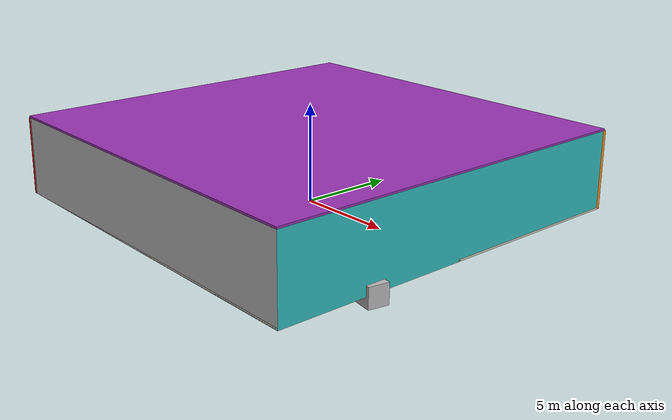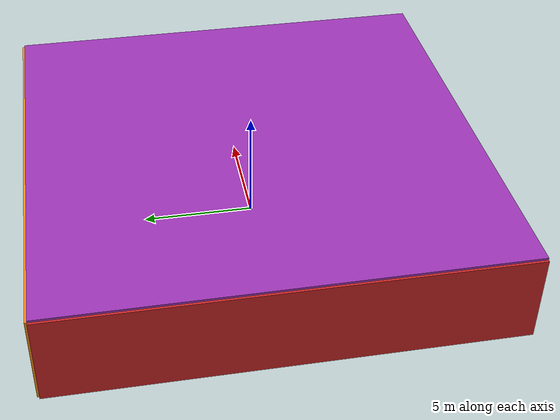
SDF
<sdf version="1.4">
 <world name="default">
  <physics type="ode">
   <max_step_size>0.001</max_step_size>
   <real_time_factor>1</real_time_factor>
   <real_time_update_rate>1000</real_time_update_rate>
   <gravity>0 0 -9.8</gravity>
  </physics>
  <scene><ambient>0.4 0.4 0.4 1</ambient><background>0.7 0.7 0.7 1</background><shadows>1</shadows></scene>
  <model name="Surrounding">
   <static>1</static>
   <link name="Ceiling">
    <collision name="Ceiling_Collision"><geometry><box><size>20 20 0.1</size></box></geometry></collision>
    <visual name="Ceiling_Visual">
     <geometry><box><size>20 20 0.1</size></box></geometry>
     <material>
      <script><uri>file://media/materials/scripts/gazebo.material</uri><name>Gazebo/Purple</name></script>
     </material>
    </visual>
    <pose>0 0 4.05 0 0 0</pose>
   </link>
   <link name="Wall_South">
    <collision name="Wall_South_Collision">
     <geometry><box><size>20 0 4</size></box></geometry>
     <pose>0 0 2 0 -0 0</pose>
    </collision>
    <visual name="Wall_South_Visual">
     <pose>0 0 2 0 -0 0</pose>
     <geometry><box><size>20 0 4</size></box></geometry>
     <material>
      <script><uri>file://media/materials/scripts/gazebo.material</uri><name>Gazebo/Pioneer2Body</name></script>
     </material>
    </visual>
    <velocity_decay><linear>0</linear><angular>0</angular></velocity_decay>
    <pose>0 -10 0 0 -0 0</pose>
   </link>
   <link name="Wall_East">
    <collision name="Wall_21_Collision">
     <geometry><box><size>20 0 4</size></box></geometry>
     <pose>0 0 2 0 -0 0</pose>
    </collision>
    <visual name="Wall_21_Visual">
     <pose>0 0 2 0 -0 0</pose>
     <geometry><box><size>20 0 4</size></box></geometry>
     <material>
      <script><uri>file://media/materials/scripts/gazebo.material</uri><name>Gazebo/Turquoise</name></script>
     </material>
    </visual>
    <velocity_decay><linear>0</linear><angular>0</angular></velocity_decay>
    <pose>10 0 0 0 -0 1.5708</pose>
   </link>
   <link name="Wall_North">
    <collision name="Wall_22_Collision">
     <geometry><box><size>20 0.2 4</size></box></geometry>
     <pose>0 0 2 0 -0 0</pose>
    </collision>
    <visual name="Wall_22_Visual">
     <pose>0 0 2 0 -0 0</pose>
     <geometry><box><size>20 0.2 4</size></box></geometry>
     <material>
      <script><uri>file://media/materials/scripts/gazebo.material</uri><name>Gazebo/Orange</name></script>
     </material>
    </visual>
    <velocity_decay><linear>0</linear><angular>0</angular></velocity_decay>
    <pose>0 10 0 0 -0 0</pose>
   </link>
   <link name="Wall_West">
    <collision name="Wall_23_Collision">
     <geometry><box><size>20 0.2 4</size></box></geometry>
     <pose>0 0 2 0 -0 0</pose>
    </collision>
    <visual name="Wall_23_Visual">
     <pose>0 0 2 0 -0 0</pose>
     <geometry><box><size>20 0.2 4</size></box></geometry>
     <material>
      <script><uri>file://media/materials/scripts/gazebo.material</uri><name>Gazebo/RedGlow</name></script>
     </material>
    </visual>
    <velocity_decay><linear>0</linear><angular>0</angular></velocity_decay>
    <pose>-10 0 0 0 0 -1.5708</pose>
   </link>
   <link name="Ground_link">
    <collision name="collision">
     <pose>0 0 .05 0 -0 0</pose>
     <geometry><box><size>20 20 0.1</size></box></geometry>
    </collision>
    <visual name="visual">
     <pose>0 0 .05 0 -0 0</pose>
     <geometry><box><size>20 20 0.1</size></box></geometry>
     <material>
      <script><uri>file://media/materials/scripts/gazebo.material</uri><name>Gazebo/PaintedWall</name></script>
     </material>
    </visual>
   </link>
   <static>1</static>
  </model>
  <spherical_coordinates>
   <surface_model>EARTH_WGS84</surface_model>
   <latitude_deg>0</latitude_deg>
   <longitude_deg>0</longitude_deg>
   <elevation>0</elevation>
   <heading_deg>0</heading_deg>
  </spherical_coordinates>
  <light name="lightball_0" type="diffuse">
   <diffuse>0.8 0.8 0.8 1</diffuse>
   <specular>0.2 0.2 0.2 1</specular>
   <attenuation>
    <range>100</range>
    <constant>0.7</constant>
    <linear>0.01</linear>
    <quadratic>0.001</quadratic>
   </attenuation>
   <direction>-0.5 0.1 -0.9</direction>
   <pose>-3.63817444598 0.0414385589515 3.36473045556 0 0 0</pose>
  </light>
  <include>
   <uri>model://construction_cone</uri>
   <pose>-4.36993908273 4.96532580164 0 0 0 0.40745685622</pose>
  </include>
  <include>
   <uri>model://construction_cone</uri>
   <pose>0.890427293756 4.25057567487 0 0 0 0.539450792607</pose>
  </include>
  <include><uri>model://table</uri><pose>4.03281751468 -4.93603563908 0 0 0 2.83321524407</pose></include>
  <include>
   <uri>model://construction_cone</uri>
   <pose>4.04187375105 4.01356019137 0 0 0 0.674807984056</pose>
  </include>
  <include>
   <uri>model://textured_shapes</uri>
   <pose>8.2902107663 -4.73587753846 0 0 0 1.39032180341</pose>
  </include>
 </world>
</sdf>

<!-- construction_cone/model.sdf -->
<sdf version="1.5">
  <model name="Construction Cone">
    <link name="link">
      <collision name="collision">
        <geometry>
          <mesh>
            <scale>10 10 10</scale>
            <uri>file://isr-testbed/construction_cone/meshes/construction_cone.dae</uri>
          </mesh>
        </geometry>
      </collision>
      <visual name="visual">
        <geometry>
          <mesh>
            <scale>10 10 10</scale>
            <uri>file://isr-testbed/construction_cone/meshes/construction_cone.dae</uri>
          </mesh>
        </geometry>
      </visual>
    </link>
  </model>
</sdf>

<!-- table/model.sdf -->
<sdf version="1.5">
  <model name="table">
    <static>true</static>
    <link name="link">
      <collision name="surface">
        <pose>0 0 1.0 0 0 0</pose>
        <geometry>
          <box>
            <size>1.5 0.8 0.03</size>
          </box>
        </geometry>
        <surface>
          <friction>
            <ode>
              <mu>0.6</mu>
              <mu2>0.6</mu2>
            </ode>
          </friction>
        </surface>
      </collision>
      <visual name="visual1">
        <pose>0 0 1.0 0 0 0</pose>
        <geometry>
          <box>
            <size>1.5 0.8 0.03</size>
          </box>
        </geometry>
        <material>
          <script>
            <uri>model://media/materials/scripts/gazebo.material</uri>
            <name>Gazebo/Wood</name>
          </script>
        </material>
      </visual>
      <collision name="front_left_leg">
        <pose>0.68 0.38 0.5 0 0 0</pose>
        <geometry>
          <cylinder>
            <radius>0.02</radius>
            <length>1.0</length>
          </cylinder>
        </geometry>
      </collision>
      <visual name="front_left_leg">
        <pose>0.68 0.38 0.5 0 0 0</pose>
        <geometry>
          <cylinder>
            <radius>0.02</radius>
            <length>1.0</length>
          </cylinder>
        </geometry>
        <material>
          <script>
            <uri>model://media/materials/scripts/gazebo.material</uri>
            <name>Gazebo/Grey</name>
          </script>
        </material>
      </visual>
      <collision name="front_right_leg">
        <pose>0.68 -0.38 0.5 0 0 0</pose>
        <geometry>
          <cylinder>
            <radius>0.02</radius>
            <length>1.0</length>
          </cylinder>
        </geometry>
      </collision>
      <visual name="front_right_leg">
        <pose>0.68 -0.38 0.5 0 0 0</pose>
        <geometry>
          <cylinder>
            <radius>0.02</radius>
            <length>1.0</length>
          </cylinder>
        </geometry>
        <material>
          <script>
            <uri>model://media/materials/scripts/gazebo.material</uri>
            <name>Gazebo/Grey</name>
          </script>
        </material>
      </visual>
      <collision name="back_right_leg">
        <pose>-0.68 -0.38 0.5 0 0 0</pose>
        <geometry>
          <cylinder>
            <radius>0.02</radius>
            <length>1.0</length>
          </cylinder>
        </geometry>
      </collision>
      <visual name="back_right_leg">
        <pose>-0.68 -0.38 0.5 0 0 0</pose>
        <geometry>
          <cylinder>
            <radius>0.02</radius>
            <length>1.0</length>
          </cylinder>
        </geometry>
        <material>
          <script>
            <uri>model://media/materials/scripts/gazebo.material</uri>
            <name>Gazebo/Grey</name>
          </script>
        </material>
      </visual>
      <collision name="back_left_leg">
        <pose>-0.68 0.38 0.5 0 0 0</pose>
        <geometry>
          <cylinder>
            <radius>0.02</radius>
            <length>1.0</length>
          </cylinder>
        </geometry>
      </collision>
      <visual name="back_left_leg">
        <pose>-0.68 0.38 0.5 0 0 0</pose>
        <geometry>
          <cylinder>
            <radius>0.02</radius>
            <length>1.0</length>
          </cylinder>
        </geometry>
        <material>
          <script>
            <uri>model://media/materials/scripts/gazebo.material</uri>
            <name>Gazebo/Grey</name>
          </script>
        </material>
      </visual>
    </link>
  </model>
</sdf>

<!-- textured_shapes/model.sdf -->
<sdf version="1.6">
  <model name="textured_shapes">
    <pose>0 0 0.5 0 0 0</pose>
    <link name="box">
      <pose>0 -1.5 0 0 0 0</pose>
      <collision name="collision">
        <geometry>
          <box>
            <size>1 1 1</size>
          </box>
        </geometry>
      </collision>
      <visual name="visual">
        <geometry>
          <box>
            <size>1 1 1</size>
          </box>
        </geometry>
        <material>
          <script>
            <uri>model://../model_source/models/textured_shapes/materials/scripts</uri>
            <uri>model://../model_source/models/textured_shapes/materials/textures</uri>
            <name>TexturedShape/Squares</name>
          </script>
        </material>
      </visual>
    </link>
    <link name="sphere">
      <collision name="collision">
        <geometry>
          <sphere>
            <radius>0.5</radius>
          </sphere>
        </geometry>
      </collision>
      <visual name="visual">
        <geometry>
          <sphere>
            <radius>0.5</radius>
          </sphere>
        </geometry>
        <material>
          <script>
            <uri>model://../model_source/models/textured_shapes/materials/scripts</uri>
            <uri>model://../model_source/models/textured_shapes/materials/textures</uri>
            <name>TexturedShape/Squares</name>
          </script>
        </material>
      </visual>
    </link>
    <link name="cylinder">
      <pose>0 1.5 0 0 0 0</pose>
      <collision name="collision">
        <geometry>
          <cylinder>
            <radius>0.5</radius>
            <length>1</length>
          </cylinder>
        </geometry>
      </collision>
      <visual name="visual">
        <geometry>
          <cylinder>
            <radius>0.5</radius>
            <length>1</length>
          </cylinder>
        </geometry>
        <material>
          <script>
            <uri>model://../model_source/models/textured_shapes/materials/scripts</uri>
            <uri>model://../model_source/models/textured_shapes/materials/textures</uri>
            <name>TexturedShape/Squares</name>
          </script>
        </material>
      </visual>
    </link>
  </model>
</sdf>
